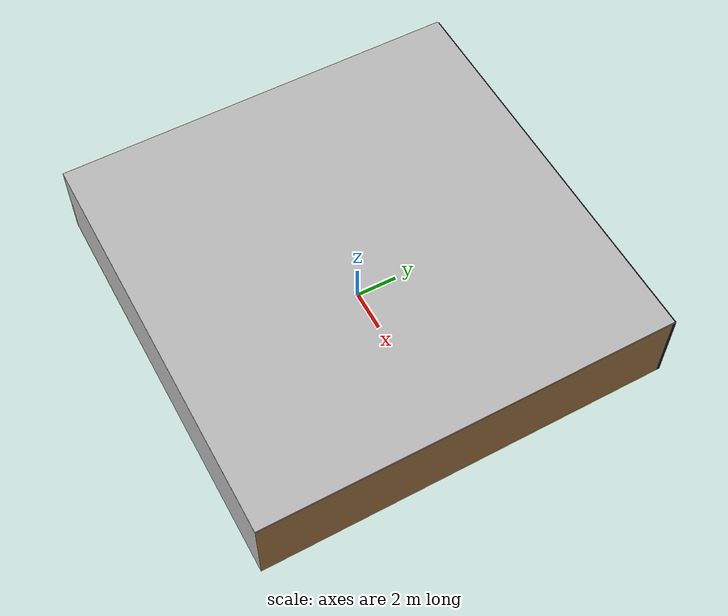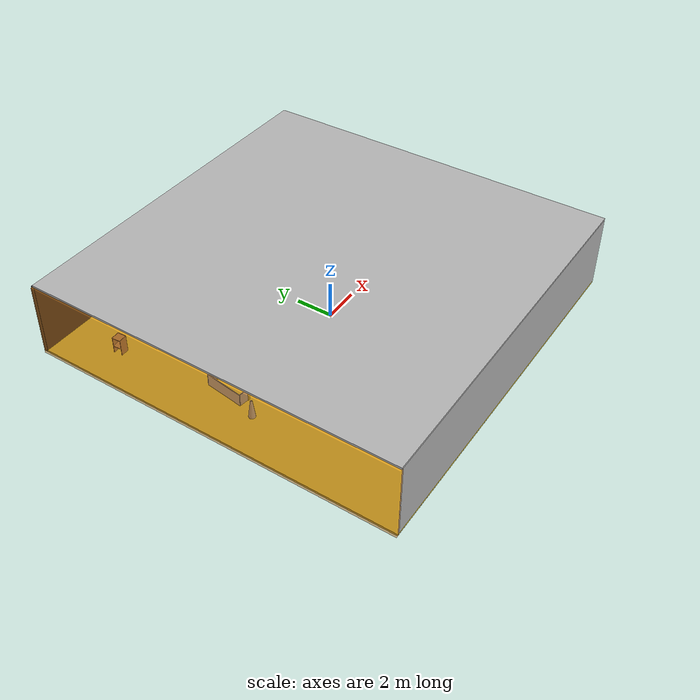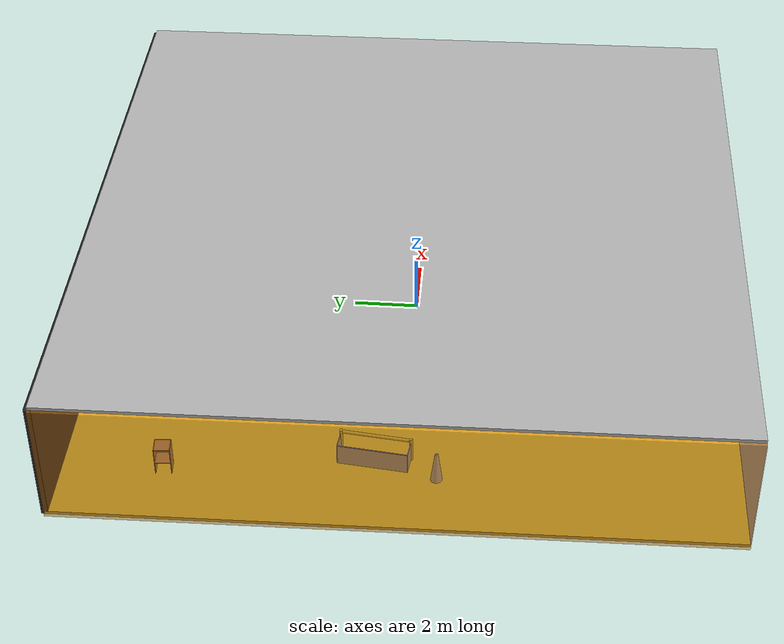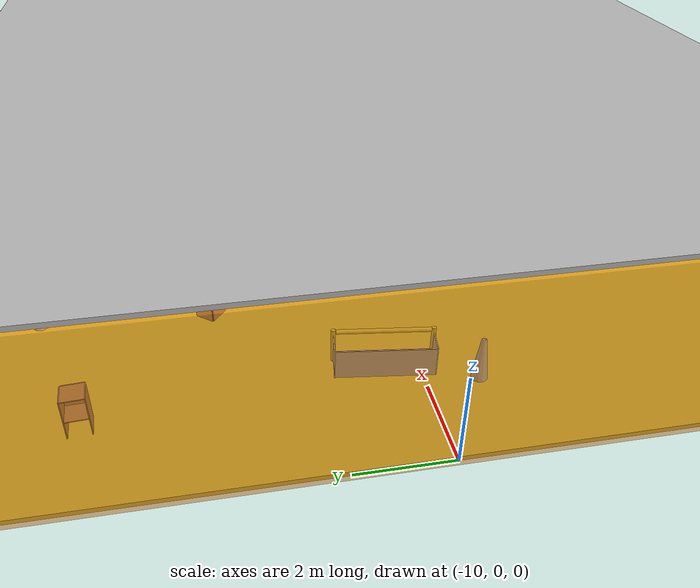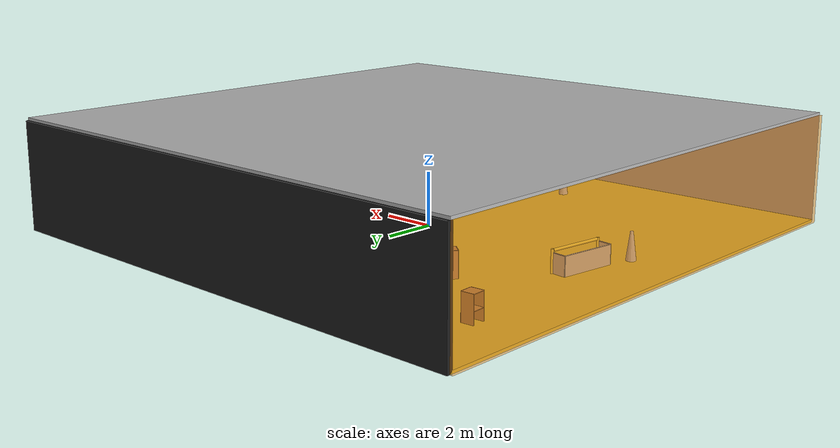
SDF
<sdf version="1.4">
 <world name="default">
  <physics type="ode">
   <max_step_size>0.001</max_step_size>
   <real_time_factor>1</real_time_factor>
   <real_time_update_rate>1000</real_time_update_rate>
   <gravity>0 0 -9.8</gravity>
  </physics>
  <scene><ambient>0.4 0.4 0.4 1</ambient><background>0.7 0.7 0.7 1</background><shadows>1</shadows></scene>
  <model name="Surrounding">
   <static>1</static>
   <link name="Ceiling">
    <collision name="Ceiling_Collision"><geometry><box><size>20 20 0.1</size></box></geometry></collision>
    <visual name="Ceiling_Visual">
     <geometry><box><size>20 20 0.1</size></box></geometry>
     <material>
      <script><uri>file://media/materials/scripts/gazebo.material</uri><name>Gazebo/CloudySky</name></script>
     </material>
    </visual>
    <pose>0 0 4.05 0 0 0</pose>
   </link>
   <link name="Wall_South">
    <collision name="Wall_South_Collision">
     <geometry><box><size>20 0 4</size></box></geometry>
     <pose>0 0 2 0 -0 0</pose>
    </collision>
    <visual name="Wall_South_Visual">
     <pose>0 0 2 0 -0 0</pose>
     <geometry><box><size>20 0 4</size></box></geometry>
     <material>
      <script><uri>file://media/materials/scripts/gazebo.material</uri><name>Gazebo/Pioneer2Body</name></script>
     </material>
    </visual>
    <velocity_decay><linear>0</linear><angular>0</angular></velocity_decay>
    <pose>0 -10 0 0 -0 0</pose>
   </link>
   <link name="Wall_East">
    <collision name="Wall_21_Collision">
     <geometry><box><size>20 0 4</size></box></geometry>
     <pose>0 0 2 0 -0 0</pose>
    </collision>
    <visual name="Wall_21_Visual">
     <pose>0 0 2 0 -0 0</pose>
     <geometry><box><size>20 0 4</size></box></geometry>
     <material>
      <script><uri>file://media/materials/scripts/gazebo.material</uri><name>Gazebo/WoodPallet</name></script>
     </material>
    </visual>
    <velocity_decay><linear>0</linear><angular>0</angular></velocity_decay>
    <pose>10 0 0 0 -0 1.5708</pose>
   </link>
   <link name="Wall_North">
    <collision name="Wall_22_Collision">
     <geometry><box><size>20 0.2 4</size></box></geometry>
     <pose>0 0 2 0 -0 0</pose>
    </collision>
    <visual name="Wall_22_Visual">
     <pose>0 0 2 0 -0 0</pose>
     <geometry><box><size>20 0.2 4</size></box></geometry>
     <material>
      <script><uri>file://media/materials/scripts/gazebo.material</uri><name>Gazebo/Black</name></script>
     </material>
    </visual>
    <velocity_decay><linear>0</linear><angular>0</angular></velocity_decay>
    <pose>0 10 0 0 -0 0</pose>
   </link>
   <link name="Wall_West">
    <collision name="Wall_23_Collision">
     <geometry><box><size>20 0.2 4</size></box></geometry>
     <pose>0 0 2 0 -0 0</pose>
    </collision>
    <visual name="Wall_23_Visual">
     <pose>0 0 2 0 -0 0</pose>
     <geometry><box><size>20 0.2 4</size></box></geometry>
     <material>
      <script>
       <uri>file://media/materials/scripts/gazebo.material</uri>
       <name>Gazebo/OrangeTransparent</name>
      </script>
     </material>
    </visual>
    <velocity_decay><linear>0</linear><angular>0</angular></velocity_decay>
    <pose>-10 0 0 0 0 -1.5708</pose>
   </link>
   <link name="Ground_link">
    <collision name="collision">
     <pose>0 0 .05 0 -0 0</pose>
     <geometry><box><size>20 20 0.1</size></box></geometry>
    </collision>
    <visual name="visual">
     <pose>0 0 .05 0 -0 0</pose>
     <geometry><box><size>20 20 0.1</size></box></geometry>
     <material>
      <script><uri>file://media/materials/scripts/gazebo.material</uri><name>Gazebo/ZincYellow</name></script>
     </material>
    </visual>
   </link>
   <static>1</static>
  </model>
  <spherical_coordinates>
   <surface_model>EARTH_WGS84</surface_model>
   <latitude_deg>0</latitude_deg>
   <longitude_deg>0</longitude_deg>
   <elevation>0</elevation>
   <heading_deg>0</heading_deg>
  </spherical_coordinates>
  <light name="lightball_0" type="diffuse">
   <diffuse>0.8 0.8 0.8 1</diffuse>
   <specular>0.2 0.2 0.2 1</specular>
   <attenuation>
    <range>100</range>
    <constant>0.7</constant>
    <linear>0.01</linear>
    <quadratic>0.001</quadratic>
   </attenuation>
   <direction>-0.5 0.1 -0.9</direction>
   <pose>8.35684065789 -1.2828016748 0.536700339383 0 0 0</pose>
  </light>
  <light name="lightball_1" type="diffuse">
   <diffuse>0.8 0.8 0.8 1</diffuse>
   <specular>0.2 0.2 0.2 1</specular>
   <attenuation>
    <range>100</range>
    <constant>0.7</constant>
    <linear>0.01</linear>
    <quadratic>0.001</quadratic>
   </attenuation>
   <direction>-0.5 0.1 -0.9</direction>
   <pose>1.41464095478 3.66639805553 2.48367676711 0 0 0</pose>
  </light>
  <light name="lightball_2" type="diffuse">
   <diffuse>0.8 0.8 0.8 1</diffuse>
   <specular>0.2 0.2 0.2 1</specular>
   <attenuation>
    <range>100</range>
    <constant>0.7</constant>
    <linear>0.01</linear>
    <quadratic>0.001</quadratic>
   </attenuation>
   <direction>-0.5 0.1 -0.9</direction>
   <pose>-2.10897430308 -7.27765271837 2.41966473698 0 0 0</pose>
  </light>
  <light name="lightball_3" type="diffuse">
   <diffuse>0.8 0.8 0.8 1</diffuse>
   <specular>0.2 0.2 0.2 1</specular>
   <attenuation>
    <range>100</range>
    <constant>0.7</constant>
    <linear>0.01</linear>
    <quadratic>0.001</quadratic>
   </attenuation>
   <direction>-0.5 0.1 -0.9</direction>
   <pose>-2.7594707937 1.40843372673 1.7680427713 0 0 0</pose>
  </light>
  <include>
   <uri>model://construction_cone</uri>
   <pose>-7.9998620382 -1.08472593816 0 0 0 2.16696809801</pose>
  </include>
  <include>
   <uri>model://robocup_3Dsim_goal</uri>
   <pose>-7.08673385461 0.743636931609 0 0 0 3.01116053947</pose>
  </include>
  <include><uri>model://cabinet</uri><pose>-8.05360818404 6.88552258079 0 0 0 0.0683653309388</pose></include>
  <include><uri>model://cabinet</uri><pose>-4.8456124648 4.25643011015 0 0 0 2.46123654496</pose></include>
  <include>
   <uri>model://construction_cone</uri>
   <pose>-4.67411774677 8.03872194593 0 0 0 1.23914462318</pose>
  </include>
  <include>
   <uri>model://construction_cone</uri>
   <pose>-0.884701595813 -6.97947041614 0 0 0 0.677933149256</pose>
  </include>
  <include>
   <uri>model://construction_cone</uri>
   <pose>-1.4317557013 3.94867588694 0 0 0 0.815856926837</pose>
  </include>
  <include>
   <uri>model://construction_cone</uri>
   <pose>4.59906404823 1.07658216262 0 0 0 2.60039823383</pose>
  </include>
  <include><uri>model://cabinet</uri><pose>7.42618280563 -3.84843458555 0 0 0 2.92976235992</pose></include>
 </world>
</sdf>

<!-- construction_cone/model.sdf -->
<sdf version="1.5">
  <model name="Construction Cone">
    <link name="link">
      <collision name="collision">
        <geometry>
          <mesh>
            <scale>10 10 10</scale>
            <uri>file://isr-testbed/construction_cone/meshes/construction_cone.dae</uri>
          </mesh>
        </geometry>
      </collision>
      <visual name="visual">
        <geometry>
          <mesh>
            <scale>10 10 10</scale>
            <uri>file://isr-testbed/construction_cone/meshes/construction_cone.dae</uri>
          </mesh>
        </geometry>
      </visual>
    </link>
  </model>
</sdf>

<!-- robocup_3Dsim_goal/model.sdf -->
<sdf version="1.5">
  <model name="robocup_3d_goal">
    <static>true</static>
    <link name="left_post">
      <pose>0 1.05 0.45 0 0 0</pose>
      <collision name="collision">
        <geometry>
          <cylinder>
            <radius>0.05</radius>
            <length>0.9</length>
          </cylinder>
        </geometry>
      </collision>
      <visual name="visual">
        <geometry>
          <cylinder>
            <radius>0.05</radius>
            <length>0.9</length>
          </cylinder>
        </geometry>
        <material>
          <script>
            <uri>file://media/materials/scripts/gazebo.material</uri>
            <name>Gazebo/ZincYellow</name>
          </script>
        </material>
      </visual>
    </link>
    <link name="left_support_horiz_lower">
      <pose>0.30 1.05 0.01 0 0 0</pose>
      <collision name="collision">
        <geometry>
          <box>
            <size>0.50 0.02 0.02</size>
          </box>
        </geometry>
      </collision>
      <visual name="visual">
        <geometry>
          <box>
            <size>0.50 0.02 0.02</size>
          </box>
        </geometry>
        <material>
          <script>
            <uri>file://media/materials/scripts/gazebo.material</uri>
            <name>Gazebo/White</name>
          </script>
        </material>
      </visual>
    </link>
    <link name="left_support_horiz_upper">
      <pose>0.30 1.05 0.79 0 0 0</pose>
      <collision name="collision">
        <geometry>
          <box>
            <size>0.50 0.02 0.02</size>
          </box>
        </geometry>
      </collision>
      <visual name="visual">
        <geometry>
          <box>
            <size>0.50 0.02 0.02</size>
          </box>
        </geometry>
        <material>
          <script>
            <uri>file://media/materials/scripts/gazebo.material</uri>
            <name>Gazebo/White</name>
          </script>
        </material>
      </visual>
    </link>
    <link name="left_support_vertical">
      <pose>0.56 1.05 0.4 0 1.5708 0</pose>
      <collision name="collision">
        <geometry>
          <box>
            <size>0.80 0.02 0.02</size>
          </box>
        </geometry>
      </collision>
      <visual name="visual">
        <geometry>
          <box>
            <size>0.80 0.02 0.02</size>
          </box>
        </geometry>
        <material>
          <script>
            <uri>file://media/materials/scripts/gazebo.material</uri>
            <name>Gazebo/White</name>
          </script>
        </material>
      </visual>
    </link>
    <link name="right_support_horiz_lower">
      <pose>0.30 -1.05 0.01 0 0 0</pose>
      <collision name="collision">
        <geometry>
          <box>
            <size>0.50 0.02 0.02</size>
          </box>
        </geometry>
      </collision>
      <visual name="visual">
        <geometry>
          <box>
            <size>0.50 0.02 0.02</size>
          </box>
        </geometry>
        <material>
          <script>
            <uri>file://media/materials/scripts/gazebo.material</uri>
            <name>Gazebo/White</name>
          </script>
        </material>
      </visual>
    </link>
    <link name="right_support_horiz_upper">
      <pose>0.30 -1.05 0.79 0 0 0</pose>
      <collision name="collision">
        <geometry>
          <box>
            <size>0.50 0.02 0.02</size>
          </box>
        </geometry>
      </collision>
      <visual name="visual">
        <geometry>
          <box>
            <size>0.50 0.02 0.02</size>
          </box>
        </geometry>
        <material>
          <script>
            <uri>file://media/materials/scripts/gazebo.material</uri>
            <name>Gazebo/White</name>
          </script>
        </material>
      </visual>
    </link>
    <link name="right_support_vertical">
      <pose>0.56 -1.05 0.4 0 1.5708 0</pose>
      <collision name="collision">
        <geometry>
          <box>
            <size>0.80 0.02 0.02</size>
          </box>
        </geometry>
      </collision>
      <visual name="visual">
        <geometry>
          <box>
            <size>0.80 0.02 0.02</size>
          </box>
        </geometry>
        <material>
          <script>
            <uri>file://media/materials/scripts/gazebo.material</uri>
            <name>Gazebo/White</name>
          </script>
        </material>
      </visual>
    </link>
    <link name="center_support_horiz_lower">
      <pose>0.56 0 0.01 0 1.5708 0</pose>
      <collision name="collision">
        <geometry>
          <box>
            <size>0.02 2.08 0.02</size>
          </box>
        </geometry>
      </collision>
      <visual name="visual">
        <geometry>
          <box>
            <size>0.02 2.08 0.02</size>
          </box>
        </geometry>
        <material>
          <script>
            <uri>file://media/materials/scripts/gazebo.material</uri>
            <name>Gazebo/White</name>
          </script>
        </material>
      </visual>
    </link>
    <link name="center_support_horiz_upper">
      <pose>0.56 0 0.79 0 1.5708 0</pose>
      <collision name="collision">
        <geometry>
          <box>
            <size>0.02 2.08 0.02</size>
          </box>
        </geometry>
      </collision>
      <visual name="visual">
        <geometry>
          <box>
            <size>0.02 2.08 0.02</size>
          </box>
        </geometry>
        <material>
          <script>
            <uri>file://media/materials/scripts/gazebo.material</uri>
            <name>Gazebo/White</name>
          </script>
        </material>
      </visual>
    </link>
    <link name="right_post">
      <pose>0 -1.05 0.45 0 0 0</pose>
      <collision name="collision">
        <geometry>
          <cylinder>
            <radius>0.05</radius>
            <length>0.9</length>
          </cylinder>
        </geometry>
      </collision>
      <visual name="visual">
        <geometry>
          <cylinder>
            <radius>0.05</radius>
            <length>0.9</length>
          </cylinder>
        </geometry>
        <material>
          <script>
            <uri>file://media/materials/scripts/gazebo.material</uri>
            <name>Gazebo/ZincYellow</name>
          </script>
        </material>
      </visual>
    </link>
    <link name="crossbar">
      <pose>0 0 0.85 1.57 1.57 0</pose>
      <collision name="collision">
        <geometry>
          <cylinder>
            <radius>0.05</radius>
            <length>2.0</length>
          </cylinder>
        </geometry>
      </collision>
      <visual name="visual">
        <geometry>
          <cylinder>
            <radius>0.05</radius>
            <length>2.0</length>
          </cylinder>
        </geometry>
        <material>
          <script>
            <uri>file://media/materials/scripts/gazebo.material</uri>
            <name>Gazebo/ZincYellow</name>
          </script>
        </material>
      </visual>
    </link>
    <link name="center_net">
      <pose>0.56 0 0.40 0 0 0</pose>
      <collision name="collision">
        <geometry>
          <box>
            <size>0.01 2.1 0.80</size>
          </box>
        </geometry>
      </collision>
      <visual name="visual">
        <geometry>
          <box>
            <size>0.01 2.1 0.80</size>
          </box>
        </geometry>
        <material>
          <script>
            <uri>model://../model_source/models/robocup09_spl_field/materials/scripts/</uri>
            <uri>model://../model_source/models/robocup09_spl_field/materials/textures/</uri>
            <name>RoboCup/Net</name>
          </script>
        </material>
      </visual>
    </link>
    <link name="left_net">
      <pose>0.30 1.05 0.40 0 0 0</pose>
      <collision name="collision">
        <geometry>
          <box>
            <size>0.50 0.01 0.76</size>
          </box>
        </geometry>
      </collision>
      <visual name="visual">
        <geometry>
          <box>
            <size>0.50 0.01 0.76</size>
          </box>
        </geometry>
        <material>
          <script>
            <uri>model://../model_source/models/robocup09_spl_field/materials/scripts/</uri>
            <uri>model://../model_source/models/robocup09_spl_field/materials/textures/</uri>
            <name>RoboCup/Net</name>
          </script>
        </material>
      </visual>
    </link>
    <link name="right_net">
      <pose>0.30 -1.05 0.40 0 0 0</pose>
      <collision name="collision">
        <geometry>
          <box>
            <size>0.50 0.01 0.76</size>
          </box>
        </geometry>
      </collision>
      <visual name="visual">
        <geometry>
          <box>
            <size>0.50 0.01 0.76</size>
          </box>
        </geometry>
        <material>
          <script>
            <uri>model://../model_source/models/robocup09_spl_field/materials/scripts/</uri>
            <uri>model://../model_source/models/robocup09_spl_field/materials/textures/</uri>
            <name>RoboCup/Net</name>
          </script>
        </material>
      </visual>
    </link>
  </model>
</sdf>

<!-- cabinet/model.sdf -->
<sdf version="1.5">
  <model name="cabinet">
    <static>true</static>
    <link name="cabinet_bottom_plate">
      <inertial>
        <pose>0 0 -1 0 0 0</pose>
        <inertia>
          <ixx>2.050000</ixx>
          <ixy>0</ixy>
          <ixz>0</ixz>
          <iyy>2.050000</iyy>
          <iyz>0</iyz>
          <izz>2.050000</izz>
        </inertia>
        <mass>25.000000</mass>
      </inertial>
      <collision name="cabinet_bottom_plate_geom">
        <pose>0 0 0.010000 0 0 0</pose>
        <geometry>
          <box>
            <size>0.450000 0.450000 0.020000</size>
          </box>
        </geometry>
      </collision>
      <visual name="cabinet_bottom_plate_geom_visual">
        <pose>0 0 0.010000 0 0 0</pose>
        <geometry>
          <box>
            <size>0.450000 0.450000 0.020000</size>
          </box>
        </geometry>
        <material>
          <script>
            <uri>model://media/materials/scripts/gazebo.material</uri>
            <name>Gazebo/Wood</name>
          </script>
        </material>
      </visual>
      <collision name="cabinet_bottom_plate_geom_cabinet_back_plate">
        <pose>0.235000 0 0.510000 0 0 0</pose>
        <geometry>
          <box>
            <size>0.020000 0.450000 1.020000</size>
          </box>
        </geometry>
      </collision>
      <visual name="cabinet_bottom_plate_geom_cabinet_back_plate_visual">
        <pose>0.235000 0 0.510000 0 0 0</pose>
        <geometry>
          <box>
            <size>0.020000 0.450000 1.020000</size>
          </box>
        </geometry>
        <material>
          <script>
            <uri>model://media/materials/scripts/gazebo.material</uri>
            <name>Gazebo/Wood</name>
          </script>
        </material>
      </visual>
      <collision name="cabinet_bottom_plate_geom_cabinet_left_plate">
        <pose>0 0.235000 0.510000 0 0 0</pose>
        <geometry>
          <box>
            <size>0.450000 0.020000 1.020000</size>
          </box>
        </geometry>
      </collision>
      <visual name="cabinet_bottom_plate_geom_cabinet_left_plate_visual">
        <pose>0 0.235000 0.510000 0 0 0</pose>
        <geometry>
          <box>
            <size>0.450000 0.020000 1.020000</size>
          </box>
        </geometry>
        <material>
          <script>
            <uri>model://media/materials/scripts/gazebo.material</uri>
            <name>Gazebo/Wood</name>
          </script>
        </material>
      </visual>
      <collision name="cabinet_bottom_plate_geom_cabinet_middle_plate">
        <pose>0 0 0.510000 0 0 0</pose>
        <geometry>
          <box>
            <size>0.450000 0.450000 0.020000</size>
          </box>
        </geometry>
      </collision>
      <visual name="cabinet_bottom_plate_geom_cabinet_middle_plate_visual">
        <pose>0 0 0.510000 0 0 0</pose>
        <geometry>
          <box>
            <size>0.450000 0.450000 0.020000</size>
          </box>
        </geometry>
        <material>
          <script>
            <uri>model://media/materials/scripts/gazebo.material</uri>
            <name>Gazebo/Wood</name>
          </script>
        </material>
      </visual>
      <collision name="cabinet_bottom_plate_geom_cabinet_right_plate">
        <pose>0 -0.235000 0.510000 0 0 0</pose>
        <geometry>
          <box>
            <size>0.450000 0.020000 1.020000</size>
          </box>
        </geometry>
      </collision>
      <visual name="cabinet_bottom_plate_geom_cabinet_right_plate_visual">
        <pose>0 -0.235000 0.510000 0 0 0</pose>
        <geometry>
          <box>
            <size>0.450000 0.020000 1.020000</size>
          </box>
        </geometry>
        <material>
          <script>
            <uri>model://media/materials/scripts/gazebo.material</uri>
            <name>Gazebo/Wood</name>
          </script>
        </material>
      </visual>
      <collision name="cabinet_bottom_plate_geom_cabinet_top_plate">
        <pose>0 0 1.010000 0 0 0</pose>
        <geometry>
          <box>
            <size>0.450000 0.450000 0.020000</size>
          </box>
        </geometry>
      </collision>
      <visual name="cabinet_bottom_plate_geom_cabinet_top_plate_visual">
        <pose>0 0 1.010000 0 0 0</pose>
        <geometry>
          <box>
            <size>0.450000 0.450000 0.020000</size>
          </box>
        </geometry>
        <material>
          <script>
            <uri>model://media/materials/scripts/gazebo.material</uri>
            <name>Gazebo/Wood</name>
          </script>
        </material>
      </visual>
    </link>
  </model>
</sdf>
